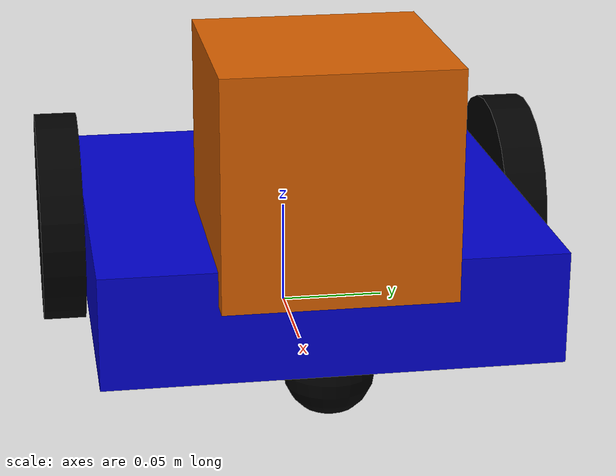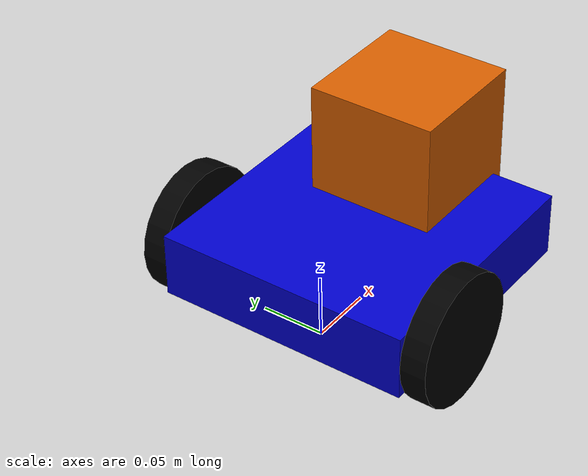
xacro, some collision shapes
<?xml version="1.0"?>

<robot name="robot" xmlns:xacro="http://www.ros.org/wiki/xacro">

  <xacro:property name="PI" value="3.1415926535897931"/>

  <xacro:property name="chassisHeight" value="0.05"/>
  <xacro:property name="chassisLength" value="0.2"/>
  <xacro:property name="chassisWidth" value="0.2"/>
  <xacro:property name="chassisMass" value="50"/>

  <xacro:property name="casterRadius" value="0.02"/>
  <xacro:property name="casterMass" value="5"/>

  <xacro:property name="wheelWidth" value="0.02"/>
  <xacro:property name="wheelRadius" value="0.05"/>
  <xacro:property name="wheelPos" value="0.1"/>
  <xacro:property name="wheelMass" value="5"/>

  <xacro:property name="rplidarMass" value="0.17"/>
  <xacro:property name="rplidarSamples" value="1020"/>
  <xacro:property name="rplidarResolution" value="1"/>
  <xacro:property name="rplidarMinAngle" value="0"/>
  <xacro:property name="rplidarMaxAngle" value="6.283185307"/>
  <xacro:property name="rplidarRange" value="12"/>
  <xacro:property name="rplidarLaserHeight" value="0.04" />

  <xacro:include filename="$(find simulation)/models/m_robot/m_robot.gazebo" />
  <xacro:include filename="$(find simulation)/models/m_robot/materials.xacro" />
  <xacro:include filename="$(find simulation)/models/m_robot/macros.xacro" />

  <link name="m_robot">
      <inertial>
        <mass value="0.0001" />
        <origin xyz="0 0 0" />
        <inertia ixx="0.0001" ixy="0.0" ixz="0.0"
                 iyy="0.0001" iyz="0.0"
                 izz="0.0001" />
      </inertial>

      <visual>
          <origin xyz="0 0 0" rpy="0 0 0" />
          <geometry>
              <box size="0.001 0.001 0.001" />
          </geometry>
          <material name="Green" />
      </visual>

      <collision>
          <origin xyz="0 0 0.128" rpy="0 0 0" />
          <geometry>
            <box size="0.001 0.001 0.001" />
          </geometry>
      </collision>
  </link>

  <joint name="base_joint" type="fixed">
    <parent link="m_robot"/>
    <child link="chassis"/>
    <origin xyz="${+wheelPos-chassisLength/4} 0 0" rpy="0 0 0" />
  </joint>

  <link name="chassis">
    <collision>
      <origin xyz="0 0 ${wheelRadius}" rpy="0 0 0"/>
        <geometry>
	        <box size="${chassisLength} ${chassisWidth} ${chassisHeight}"/>
        </geometry>
    </collision>

    <visual>
      <origin xyz="0 0 ${wheelRadius}" rpy="0 0 0"/>
      <geometry>
	       <box size="${chassisLength} ${chassisWidth} ${chassisHeight}"/>
      </geometry>
      <material name="blue"/>
    </visual>

    <inertial>
      <origin xyz="0 0 ${wheelRadius/2}" rpy="0 0 0"/>
      <mass value="${chassisMass}"/>
      <box_inertia m="${chassisMass}" x="${chassisWidth}" y="${chassisLength}" z="${chassisHeight}"/>
    </inertial>
  </link>

  <joint name="fixed" type="fixed">
    <parent link="chassis"/>
    <child link="caster_wheel"/>
    <origin xyz="${-casterRadius+chassisLength/2} 0 ${casterRadius-chassisHeight+wheelRadius}" rpy="0 0 0" />
    <axis xyz="0 0 0" />
  </joint>

  <link name="caster_wheel">

    <collision>
      <origin xyz="0 0 0" rpy="0 0 0"/>
      <geometry>
	    <sphere radius="${casterRadius}"/>
      </geometry>
    </collision>

    <visual>
      <origin xyz="0 0 0" rpy="0 0 0"/>
      <geometry>
	    <sphere radius="${casterRadius}"/>
      </geometry>
      <material name="black"/>
    </visual>

    <inertial>
      <origin xyz="0 0 0" rpy="0 0 0"/>
      <mass value="${casterMass}"/>
      <sphere_inertia m="${casterMass}" r="${casterRadius}"/>
    </inertial>
  </link>

  <wheel lr="right" tY="-1"/>
  <wheel lr="left" tY="1"/>

  <link name="rplidar">
    <collision>
      <origin xyz="0 0 0" rpy="0 0 0"/>
      <geometry>
    <box size="0.1 0.1 0.1"/>
      </geometry>
    </collision>

    <visual>
      <origin xyz="0 0 0" rpy="0 0 0"/>
      <geometry>
        <mesh filename="package://simulation/meshes/hokuyo.dae"/>
      </geometry>
    </visual>

    <inertial>
      <mass value="${rplidarMass}" />
      <origin xyz="0 0 0" rpy="0 0 0"/>
      <inertia ixx="1e-6" ixy="0" ixz="0" iyy="1e-6" iyz="0" izz="1e-6" />
    </inertial>
  </link>

  <joint name="rplidar_joint" type="fixed">
    <parent link="chassis"/>
    <child link="rplidar"/>
    <origin xyz="${-2*casterRadius+chassisLength/2} 0 ${casterRadius+chassisHeight + rplidarLaserHeight}" rpy="0 0 0" />
    <axis xyz="0 1 0" />
  </joint>

  <gazebo reference="rplidar">
    <sensor type="ray" name="head_hokuyo_sensor">
      <pose> 0 0 0 0 0 0</pose>
      <visualize>false</visualize>
      <update_rate>40</update_rate>
      <ray>
        <scan>
          <horizontal>
            <samples>${rplidarSamples}</samples>
            <resolution>${rplidarResolution}</resolution>
            <min_angle>${rplidarMinAngle}</min_angle>
            <max_angle>${rplidarMaxAngle}</max_angle>
          </horizontal>
        </scan>
        <range>
          <min>0.1</min>
          <max>${rplidarRange}</max>
          <resolution>0.01</resolution>
        </range>
        <noise>
          <type>gaussian</type>
          <mean>0.0</mean>
          <stddev>0.01</stddev>
        </noise>
      </ray>

      <plugin name="gazebo_ros_head_hokuyo_controller" filename="libgazebo_ros_laser.so">
        <topicName>/m_robot/laser/scan</topicName>
        <frameName>rplidar</frameName>
      </plugin>
    </sensor>
  </gazebo>

</robot>

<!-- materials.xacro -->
<robot>

  <material name="black">
    <color rgba="0.0 0.0 0.0 1.0"/>
  </material>

  <material name="blue">
    <color rgba="0.0 0.0 0.8 1.0"/>
  </material>

</robot>

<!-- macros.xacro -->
<robot>
     <macro name="cylinder_inertia" params="m r h">
        <inertia  ixx="${m*(3*r*r+h*h)/12}" ixy = "0" ixz = "0"
                  iyy="${m*(3*r*r+h*h)/12}" iyz = "0"
                  izz="${m*r*r/2}" />
      </macro>

      <macro name="box_inertia" params="m x y z">
        <inertia  iyy="${m*(y*y+z*z)/12}" ixy = "0" ixz = "0"
                  izz="${m*(x*x+y*y)/12}" iyz = "0"
                  ixx="${m*(x*x+z*z)/12}" />
      </macro>

      <macro name="sphere_inertia" params="m r">
        <inertia  ixx="${2*m*r*r/5}" ixy = "0" ixz = "0"
                  iyy="${2*m*r*r/5}" iyz = "0"
                  izz="${2*m*r*r/5}" />
      </macro>

     <macro name="wheel" params="lr tY">

      <link name="${lr}_wheel">

         <visual>
           <origin xyz="0 0 0" rpy="0 ${PI/2} ${PI/2}" />
           <geometry>
             <cylinder length="${wheelWidth}" radius="${wheelRadius}"/>
           </geometry>
           <material name="black"/>
         </visual>

        <collision>
          <origin xyz="0 0 0" rpy="0 ${PI/2} ${PI/2}" />
          <geometry>
            <cylinder length="${wheelWidth}" radius="${wheelRadius}"/>
          </geometry>

        </collision>

        <inertial>
          <origin xyz="0 0 0" rpy="0 ${PI/2} ${PI/2}" />
          <mass value="${wheelMass}"/>
          <cylinder_inertia m="${wheelMass}" r="${wheelRadius}" h="${wheelWidth}"/>
        </inertial>
      </link>

        <gazebo reference="${lr}_wheel">
          <material>Gazebo/Black</material>
            <mu1 value="100.0" />
            <mu2 value="100.0" />
            <kp  value="1000000.0" />
            <kd  value="1.0" />
        </gazebo>

       <joint name="${lr}_wheel_hinge" type="continuous">
          <parent link="chassis"/>
          <child link="${lr}_wheel"/>
          <origin xyz="-${+wheelPos-chassisLength/4} ${tY*wheelWidth/2+tY*chassisWidth/2} ${wheelRadius}" rpy="0 0 0" />
          <axis xyz="0 1 0" rpy="0 0 0" />
          <limit effort="30" velocity="30"/>
          <joint_properties damping="0" friction="0"/>
        </joint>

        <transmission name="${lr}_trans">
          <type>transmission_interface/SimpleTransmission</type>
          <joint name="${lr}_wheel_hinge">
            <hardwareInterface>hardware_interface/PositionJointInterface</hardwareInterface>
          </joint>
          <actuator name="${lr}_motor">
            <hardwareInterface>PositionJointInterface</hardwareInterface>
            <mechanicalReduction>1</mechanicalReduction>
          </actuator>
        </transmission>

     </macro>
</robot>
